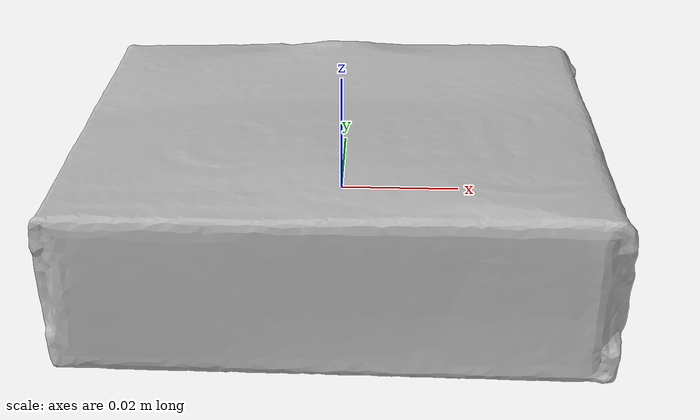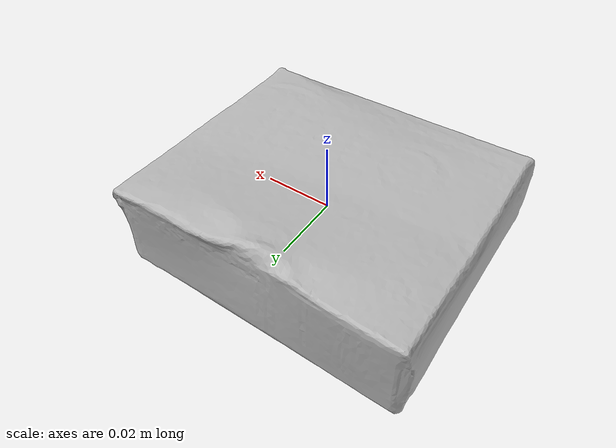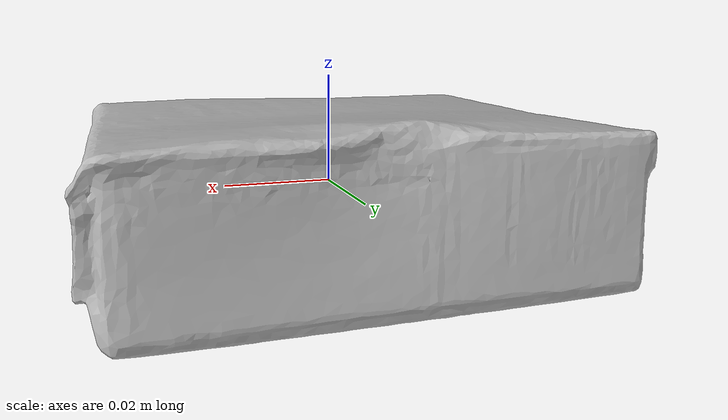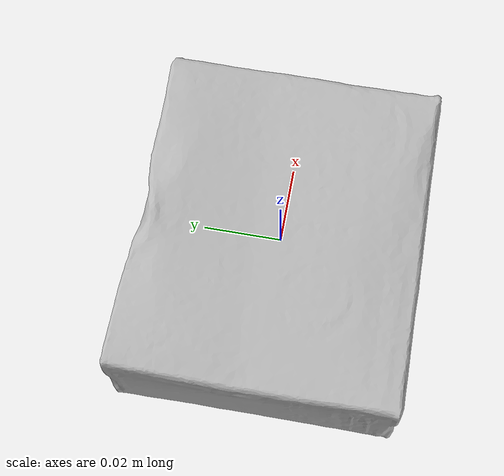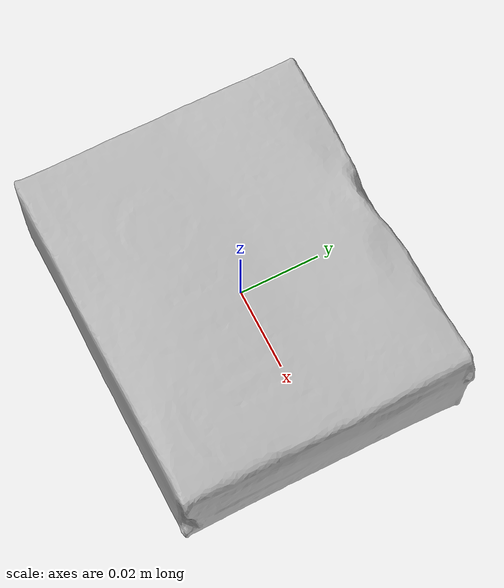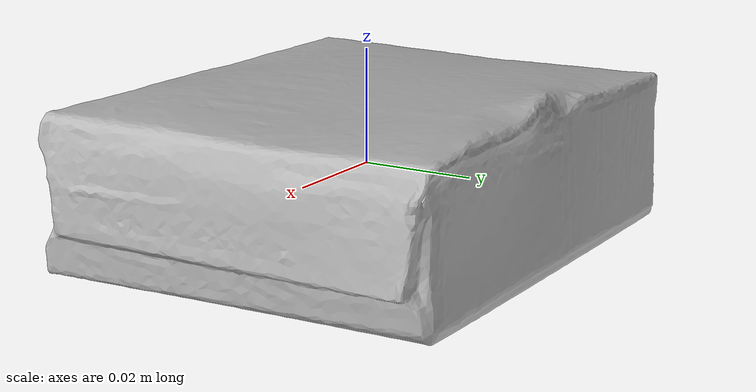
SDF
<?xml version="1.0"?>
<sdf version='1.6'>
<model name="009_gelatin_box">
  <link name="base_link_gelatin">

    <inertial>
      <pose frame=''>0 0 0 0 0 0</pose>
      <mass>0.097000</mass>
        <inertia>
          <ixx>0.000050</ixx>
          <ixy>0</ixy>
          <ixz>0</ixz>
          <iyy>0.000072</iyy>
          <iyz>0</iyz>
          <izz>0.000108</izz>
        </inertia>
    </inertial>

    <visual name='base_link_gelatin'>
      <pose frame=''>0 0 0 0 0 0</pose>
      <geometry>
        <mesh>
          <uri>../meshes/009_gelatin_box_textured.obj</uri>
        </mesh>
      </geometry>
    </visual>

    <collision name='gelatin_box_collision'>
      <pose>0 0 0 0 0 0</pose>
      <geometry>
        <box>
          <size>0.083200 0.067100 0.024000</size>
        </box>
      </geometry>
      <material>
        <diffuse>0 1 0 1.0</diffuse>
      </material>
    </collision>

    <collision name='point_collision1'>
      <pose>0.042100 0.034050 0.012500 0 0 0 </pose>
      <geometry>
        <sphere><radius>1e-7</radius></sphere>
      </geometry>
    </collision>

    <collision name='point_collision2'>
      <pose>0.042100 -0.034050 0.012500 0 0 0 </pose>
      <geometry>
        <sphere><radius>1e-7</radius></sphere>
      </geometry>
    </collision>

    <collision name='point_collision3'>
      <pose>-0.042100 0.034050 0.012500 0 0 0 </pose>
      <geometry>
        <sphere><radius>1e-7</radius></sphere>
      </geometry>
    </collision>

    <collision name='point_collision4'>
      <pose>-0.042100 -0.034050 0.012500 0 0 0 </pose>
      <geometry>
        <sphere><radius>1e-7</radius></sphere>
      </geometry>
    </collision>

    <collision name='point_collision5'>
      <pose>0.042100 0.034050 -0.012500 0 0 0 </pose>
      <geometry>
        <sphere><radius>1e-7</radius></sphere>
      </geometry>
    </collision>

    <collision name='point_collision6'>
      <pose>0.042100 -0.034050 -0.012500 0 0 0 </pose>
      <geometry>
        <sphere><radius>1e-7</radius></sphere>
      </geometry>
    </collision>

    <collision name='point_collision7'>
      <pose>-0.042100 0.034050 -0.012500 0 0 0 </pose>
      <geometry>
        <sphere><radius>1e-7</radius></sphere>
      </geometry>
    </collision>

    <collision name='point_collision8'>
      <pose>-0.042100 -0.034050 -0.012500 0 0 0 </pose>
      <geometry>
        <sphere><radius>1e-7</radius></sphere>
      </geometry>
    </collision>

  </link>
</model>
</sdf>
